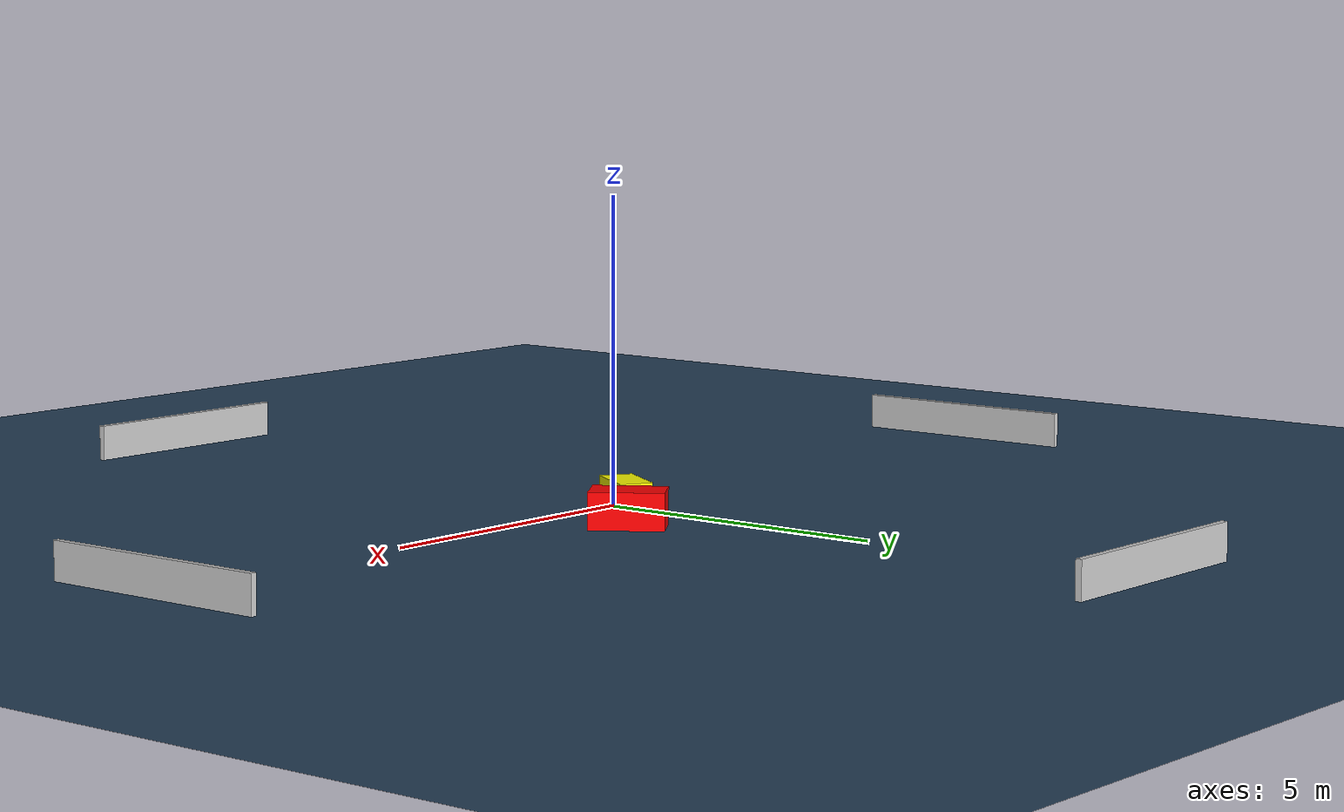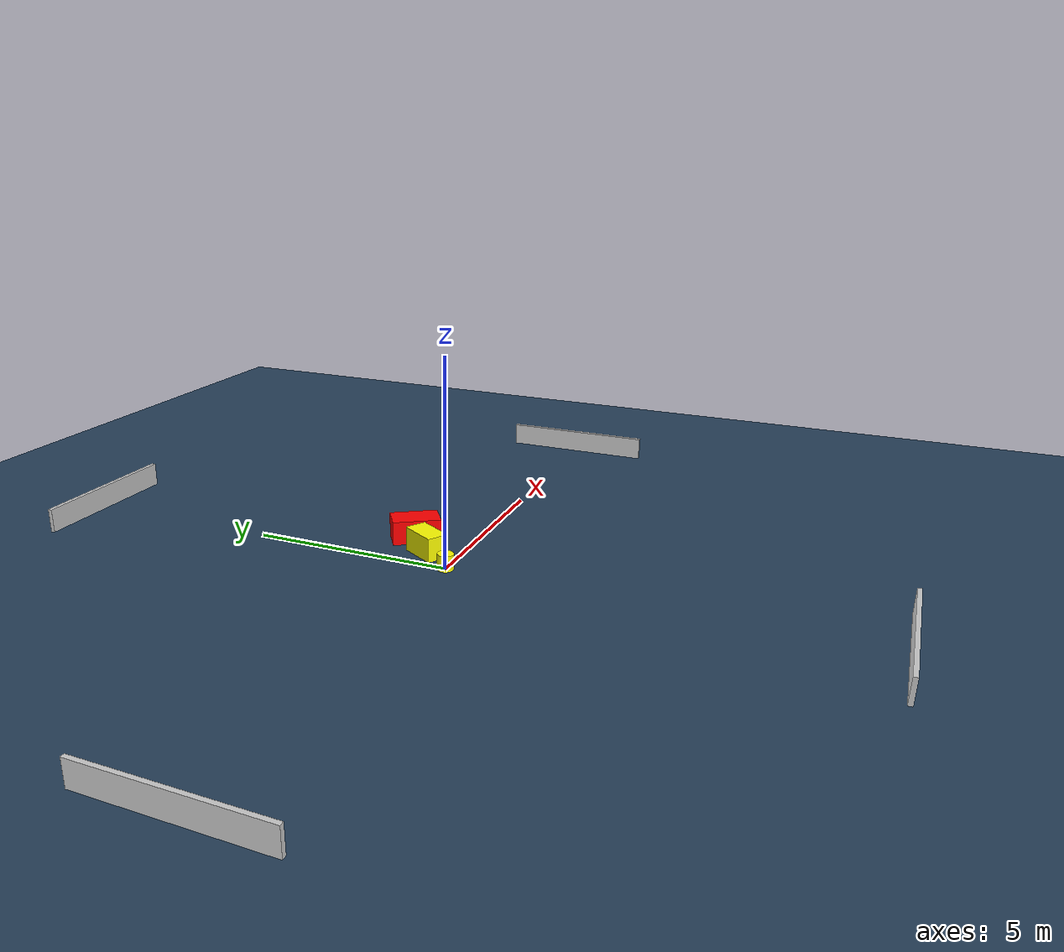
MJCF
<?xml version="1.0" ?>
<mujoco model="generated_environment">
  <option timestep="0.01" integrator="RK4" cone="elliptic"/>
  <default>
    <geom density="1"/>
  </default>
  <asset>
    <texture builtin="gradient" height="3072" name="skybox" rgb1="0.3 0.5 0.7" rgb2="0 0 0" type="skybox" width="512"/>
    <texture builtin="checker" height="300" name="groundplane" rgb1="0.2 0.3 0.4" rgb2="0.1 0.2 0.3" type="2d" width="300"/>
    <material name="groundplane" reflectance="0.2" texrepeat="5 5" texture="groundplane"/>
  </asset>
  <worldbody>
    <light dir="0 0 -1" directional="true" pos="0 0 1.5"/>
    <geom condim="3" friction="0.5 0.005 0.001" material="groundplane" name="floor" pos="0 0 0" size="0 0 0.05" type="plane"/>
    <body name="walls">
      <geom name="wall_1" condim="4" pos="-10.0 0.0 0.3" rgba="0.800000011920929 0.800000011920929 0.800000011920929 1.0" size="0.05 2.0 0.3" type="box"/>
      <geom name="wall_2" condim="4" pos="10.0 0.0 0.3" rgba="0.800000011920929 0.800000011920929 0.800000011920929 1.0" size="0.05 2.0 0.3" type="box"/>
      <geom name="wall_3" condim="4" pos="0.0 -10.0 0.3" rgba="0.800000011920929 0.800000011920929 0.800000011920929 1.0" size="2.0 0.05 0.3" type="box"/>
      <geom name="wall_4" condim="4" pos="0.0 10.0 0.3" rgba="0.800000011920929 0.800000011920929 0.800000011920929 1.0" size="2.0 0.05 0.3" type="box"/>
    </body>
    <body name="robot">
      <joint name="joint_x" type="slide" pos="0 0 0" axis="1 0 0"/>
      <joint name="joint_y" type="slide" pos="0 0 0" axis="0 1 0"/>
      <geom name="robot" type="cylinder" pos="0.0 0.0 0.2" size="0.2 0.2 0.0" mass="5.0" friction="1.0 0.005 0.0001" condim="4" rgba="1.0 1.0 0.0 1.0"/>
    </body>
    <body name="obstacle_1_movable">
      <geom name="obstacle_1_movable" condim="4" pos="0.636906787162728 0.7823131996033889 0.3" euler="0 0 149.13779155337014" friction="0.0 0.005 0.001" rgba="1.0 1.0 0.0 1.0" size="0.2727690979206634 0.4805888866850115 0.3" type="box" mass="0.1"/>
      <joint type="free"/>
    </body>
    <body name="obstacle_2_static">
      <geom name="obstacle_2_static" condim="4" pos="1.3785590626418271 1.4394736438126843 0.3" euler="0 0 33.483684812372616" friction="0.0 0.005 0.001" rgba="1.0 0.0 0.0 1.0" size="0.3479283529890901 0.5963956563454833 0.3" type="box"/>
    </body>
  </worldbody>
  <actuator>
    <motor name="actuator_x" joint="joint_x" gear="1" ctrlrange="-1 1"/>
    <motor name="actuator_y" joint="joint_y" gear="1" ctrlrange="-1 1"/>
  </actuator>
</mujoco>
